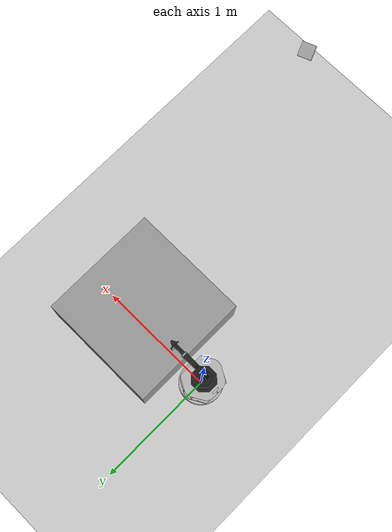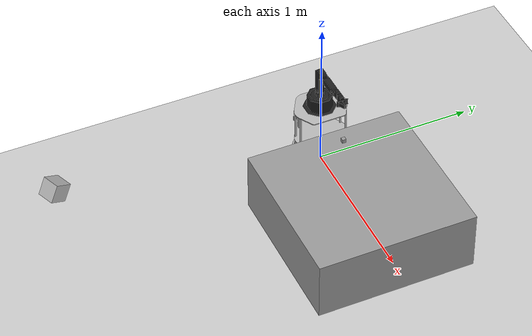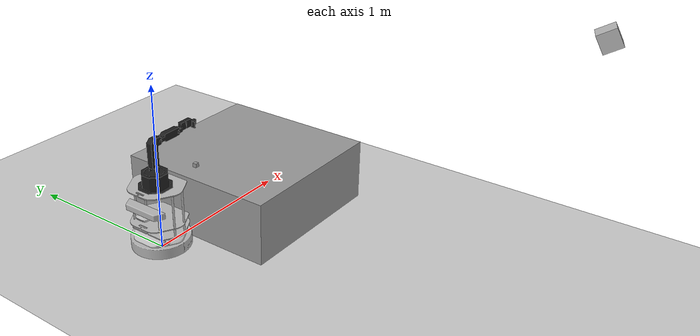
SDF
<sdf version="1.6">
 <world name="prueba1">
  <model name="ground_plane">
   <static>1</static>
   <link name="link">
    <collision name="collision">
     <geometry><plane><normal>0 0 1</normal><size>100 100</size></plane></geometry>
     <surface><friction><ode><mu>100</mu><mu2>50</mu2></ode></friction></surface>
    </collision>
    <visual name="visual">
     <cast_shadows>0</cast_shadows>
     <geometry><plane><normal>0 0 1</normal><size>100 100</size></plane></geometry>
     <material>
      <script><uri>file://media/materials/scripts/gazebo.material</uri><name>Gazebo/Grey</name></script>
     </material>
    </visual>
    <velocity_decay><linear>0</linear><angular>0</angular></velocity_decay>
   </link>
  </model>
  <light name="sun" type="directional">
   <pose>0 0 10 0 -0 0</pose>
   <diffuse>0.8 0.8 0.8 1</diffuse>
   <specular>0.2 0.2 0.2 1</specular>
   <attenuation>
    <range>1000</range>
    <constant>0.9</constant>
    <linear>0.01</linear>
    <quadratic>0.001</quadratic>
   </attenuation>
   <direction>-0.5 0.1 -0.9</direction>
  </light>
  <physics name="default_physics" default="0" type="ode">
   <max_step_size>0.001</max_step_size>
   <real_time_factor>1</real_time_factor>
   <real_time_update_rate>1000</real_time_update_rate>
  </physics>
  <scene><ambient>0.4 0.4 0.4 1</ambient><background>0.7 0.7 0.7 1</background><shadows>1</shadows></scene>
  <spherical_coordinates>
   <surface_model>EARTH_WGS84</surface_model>
   <latitude_deg>0</latitude_deg>
   <longitude_deg>0</longitude_deg>
   <elevation>0</elevation>
   <heading_deg>0</heading_deg>
  </spherical_coordinates>
  <model name="unit_box_1">
   <static>1</static>
   <pose>0.697052 -0.073491 0.176692 0 -0 0</pose>
   <link name="link_box_1">
    <inertial>
     <mass>1</mass>
     <inertia><ixx>1</ixx><ixy>0</ixy><ixz>0</ixz><iyy>1</iyy><iyz>0</iyz><izz>1</izz></inertia>
    </inertial>
    <collision name="collision">
     <geometry><box><size>1 1 0.407127</size></box></geometry>
     <surface><friction><ode><mu>100</mu><mu2>50</mu2></ode></friction></surface>
    </collision>
    <visual name="visual">
     <geometry><box><size>1 1 0.407127</size></box></geometry>
     <material>
      <script><uri>file://media/materials/scripts/gazebo.material</uri><name>Gazebo/Grey</name></script>
     </material>
    </visual>
    <velocity_decay><linear>0</linear><angular>0</angular></velocity_decay>
   </link>
   <static>0</static>
  </model>
  <gravity>0 0 -9.8</gravity>
  <magnetic_field>6e-06 2.3e-05 -4.2e-05</magnetic_field>
  <atmosphere type="adiabatic"/>
  <model name="crumb">
   <link name="base_footprint">
    <inertial>
     <pose>-0.010142 1.1e-05 0.184341 0 -0 0</pose>
     <mass>5.8303</mass>
     <inertia>
      <ixx>0.219564</ixx>
      <ixy>-4.13263e-06</ixy>
      <ixz>0.0164845</ixz>
      <iyy>0.21823</iyy>
      <iyz>9.54433e-06</iyz>
      <izz>0.0836708</izz>
     </inertia>
    </inertial>
    <collision name="base_footprint_fixed_joint_lump__base_link_collision">
     <pose>0 0 0.06969 0 -0 0</pose>
     <geometry><cylinder><length>0.10938</length><radius>0.178</radius></cylinder></geometry>
     <surface><friction><ode><mu>0.3</mu><mu2>0.3</mu2></ode></friction></surface>
    </collision>
    <collision name="base_footprint_fixed_joint_lump__camera_link_collision_1">
     <pose>-0.118 0 0.2812 0 -0 0</pose>
     <geometry><box><size>0.07271 0.27794 0.073</size></box></geometry>
    </collision>
    <collision name="base_footprint_fixed_joint_lump__caster_back_link_collision_2">
     <pose>-0.135 0 0.0192 -1.5708 0 0</pose>
     <geometry><cylinder><length>0.0176</length><radius>0.017</radius></cylinder></geometry>
     <surface>
      <contact><ode><kp>1e+06</kp><kd>100</kd><max_vel>1</max_vel><min_depth>0.001</min_depth></ode></contact>
      <friction><ode><mu>0</mu><mu2>0</mu2></ode></friction>
     </surface>
    </collision>
    <collision name="base_footprint_fixed_joint_lump__caster_front_link_collision_3">
     <pose>0.115 0 0.0172 -1.5708 0 0</pose>
     <geometry><cylinder><length>0.0176</length><radius>0.017</radius></cylinder></geometry>
     <surface>
      <contact><ode><kp>1e+06</kp><kd>100</kd><max_vel>1</max_vel><min_depth>0.001</min_depth></ode></contact>
      <friction><ode><mu>0</mu><mu2>0</mu2></ode></friction>
     </surface>
    </collision>
    <collision name="base_footprint_fixed_joint_lump__plate_bottom_link_collision_4">
     <pose>0 0 0.1408 0 -0 0</pose>
     <geometry><cylinder><length>0.006</length><radius>0.17</radius></cylinder></geometry>
    </collision>
    <collision name="base_footprint_fixed_joint_lump__plate_middle_link_collision_5">
     <pose>0 0 0.1976 0 -0 0</pose>
     <geometry><cylinder><length>0.006</length><radius>0.17</radius></cylinder></geometry>
    </collision>
    <collision name="base_footprint_fixed_joint_lump__plate_top_link_collision_6">
     <pose>0 0 0.4068 0 -0 0</pose>
     <geometry><cylinder><length>0.006</length><radius>0.17</radius></cylinder></geometry>
    </collision>
    <collision name="base_footprint_fixed_joint_lump__arm_base_link_collision_7">
     <pose>-0.01364 0 0.4068 0 -0 0</pose>
     <geometry>
      <mesh>
       <scale>1 1 1</scale>
       <uri>/home/airan/kinetic/src/Crumb/crumb_description/meshes/base_link.stl</uri>
      </mesh>
     </geometry>
    </collision>
    <collision name="base_footprint_fixed_joint_lump__pole_bottom_0_link_collision_8">
     <pose>0.12 0.082 0.113 0 -0 0</pose>
     <geometry><cylinder><length>0.0492</length><radius>0.006</radius></cylinder></geometry>
    </collision>
    <collision name="base_footprint_fixed_joint_lump__pole_bottom_1_link_collision_9">
     <pose>0.055 0.12 0.113 0 -0 0</pose>
     <geometry><cylinder><length>0.0492</length><radius>0.006</radius></cylinder></geometry>
    </collision>
    <collision name="base_footprint_fixed_joint_lump__pole_bottom_2_link_collision_10">
     <pose>-0.055 0.12 0.113 0 -0 0</pose>
     <geometry><cylinder><length>0.0492</length><radius>0.006</radius></cylinder></geometry>
    </collision>
    <collision name="base_footprint_fixed_joint_lump__pole_bottom_3_link_collision_11">
     <pose>0.12 -0.082 0.113 0 -0 0</pose>
     <geometry><cylinder><length>0.0492</length><radius>0.006</radius></cylinder></geometry>
    </collision>
    <collision name="base_footprint_fixed_joint_lump__pole_bottom_4_link_collision_12">
     <pose>0.055 -0.12 0.113 0 -0 0</pose>
     <geometry><cylinder><length>0.0492</length><radius>0.006</radius></cylinder></geometry>
    </collision>
    <collision name="base_footprint_fixed_joint_lump__pole_bottom_5_link_collision_13">
     <pose>-0.055 -0.12 0.113 0 -0 0</pose>
     <geometry><cylinder><length>0.0492</length><radius>0.006</radius></cylinder></geometry>
    </collision>
    <collision name="base_footprint_fixed_joint_lump__pole_kinect_0_link_collision_14">
     <pose>-0.1024 0.098 0.2474 0 -0 0</pose>
     <geometry><cylinder><length>0.0936</length><radius>0.006</radius></cylinder></geometry>
    </collision>
    <collision name="base_footprint_fixed_joint_lump__pole_kinect_1_link_collision_15">
     <pose>-0.1024 -0.098 0.2474 0 -0 0</pose>
     <geometry><cylinder><length>0.0936</length><radius>0.006</radius></cylinder></geometry>
    </collision>
    <collision name="base_footprint_fixed_joint_lump__pole_middle_0_link_collision_16">
     <pose>0.0381 0.1505 0.1742 0 -0 0</pose>
     <geometry><cylinder><length>0.0608</length><radius>0.006</radius></cylinder></geometry>
    </collision>
    <collision name="base_footprint_fixed_joint_lump__pole_middle_1_link_collision_17">
     <pose>0.0381 -0.1505 0.1742 0 -0 0</pose>
     <geometry><cylinder><length>0.0608</length><radius>0.006</radius></cylinder></geometry>
    </collision>
    <collision name="base_footprint_fixed_joint_lump__pole_middle_2_link_collision_18">
     <pose>-0.0381 0.1505 0.1742 0 -0 0</pose>
     <geometry><cylinder><length>0.0608</length><radius>0.006</radius></cylinder></geometry>
    </collision>
    <collision name="base_footprint_fixed_joint_lump__pole_middle_3_link_collision_19">
     <pose>-0.0381 -0.1505 0.1742 0 -0 0</pose>
     <geometry><cylinder><length>0.0608</length><radius>0.006</radius></cylinder></geometry>
    </collision>
    <collision name="base_footprint_fixed_joint_lump__pole_top_0_link_collision_20">
     <pose>0.0381 0.1505 0.3022 0 -0 0</pose>
     <geometry><cylinder><length>0.2032</length><radius>0.006</radius></cylinder></geometry>
    </collision>
    <collision name="base_footprint_fixed_joint_lump__pole_top_1_link_collision_21">
     <pose>0.0381 -0.1505 0.3022 0 -0 0</pose>
     <geometry><cylinder><length>0.2032</length><radius>0.006</radius></cylinder></geometry>
    </collision>
    <collision name="base_footprint_fixed_joint_lump__pole_top_2_link_collision_22">
     <pose>-0.0381 0.1505 0.3022 0 -0 0</pose>
     <geometry><cylinder><length>0.2032</length><radius>0.006</radius></cylinder></geometry>
    </collision>
    <collision name="base_footprint_fixed_joint_lump__pole_top_3_link_collision_23">
     <pose>-0.0381 -0.1505 0.3022 0 -0 0</pose>
     <geometry><cylinder><length>0.2032</length><radius>0.006</radius></cylinder></geometry>
    </collision>
    <visual name="base_footprint_fixed_joint_lump__base_link_visual">
     <pose>0.001 0 0.06219 0 -0 0</pose>
     <geometry>
      <mesh><scale>1 1 1</scale><uri>/opt/ros/kinetic/share/kobuki_description/meshes/main_body.dae</uri></mesh>
     </geometry>
     <material><script><uri>__default__</uri><name>__default__</name></script></material>
    </visual>
    <visual name="base_footprint_fixed_joint_lump__camera_link_visual_1">
     <pose>-0.118 0 0.2812 0 -0 1.5708</pose>
     <geometry>
      <mesh>
       <scale>1 1 1</scale>
       <uri>/opt/ros/kinetic/share/turtlebot_description/meshes/sensors/kinect.dae</uri>
      </mesh>
     </geometry>
     <material><script><uri>__default__</uri><name>__default__</name></script></material>
    </visual>
    <visual name="base_footprint_fixed_joint_lump__plate_bottom_link_visual_2">
     <pose>0.02364 0 0.1408 0 -0 0</pose>
     <geometry>
      <mesh>
       <scale>1 1 1</scale>
       <uri>/opt/ros/kinetic/share/turtlebot_description/meshes/stacks/hexagons/plate_bottom.dae</uri>
      </mesh>
     </geometry>
    </visual>
    <visual name="base_footprint_fixed_joint_lump__plate_middle_link_visual_3">
     <pose>-0.01364 0 0.1976 0 -0 0</pose>
     <geometry>
      <mesh>
       <scale>1 1 1</scale>
       <uri>/opt/ros/kinetic/share/turtlebot_description/meshes/stacks/hexagons/plate_middle.dae</uri>
      </mesh>
     </geometry>
    </visual>
    <visual name="base_footprint_fixed_joint_lump__plate_top_link_visual_4">
     <pose>-0.01364 0 0.4068 0 -0 0</pose>
     <geometry>
      <mesh>
       <scale>1 1 1</scale>
       <uri>/opt/ros/kinetic/share/turtlebot_description/meshes/stacks/hexagons/plate_top.dae</uri>
      </mesh>
     </geometry>
    </visual>
    <visual name="base_footprint_fixed_joint_lump__arm_base_link_visual_5">
     <pose>-0.01364 0 0.4068 0 -0 0</pose>
     <geometry>
      <mesh>
       <scale>1 1 1</scale>
       <uri>/home/airan/kinetic/src/Crumb/crumb_description/meshes/base_link.stl</uri>
      </mesh>
     </geometry>
     <material>
      <script><name>Gazebo/Black</name><uri>file://media/materials/scripts/gazebo.material</uri></script>
     </material>
    </visual>
    <visual name="base_footprint_fixed_joint_lump__pole_bottom_0_link_visual_6">
     <pose>0.12 0.082 0.113 0 -0 0</pose>
     <geometry>
      <mesh>
       <scale>1 1 1</scale>
       <uri>/opt/ros/kinetic/share/turtlebot_description/meshes/stacks/hexagons/pole_bottom.dae</uri>
      </mesh>
     </geometry>
    </visual>
    <visual name="base_footprint_fixed_joint_lump__pole_bottom_1_link_visual_7">
     <pose>0.055 0.12 0.113 0 -0 0</pose>
     <geometry>
      <mesh>
       <scale>1 1 1</scale>
       <uri>/opt/ros/kinetic/share/turtlebot_description/meshes/stacks/hexagons/pole_bottom.dae</uri>
      </mesh>
     </geometry>
    </visual>
    <visual name="base_footprint_fixed_joint_lump__pole_bottom_2_link_visual_8">
     <pose>-0.055 0.12 0.113 0 -0 0</pose>
     <geometry>
      <mesh>
       <scale>1 1 1</scale>
       <uri>/opt/ros/kinetic/share/turtlebot_description/meshes/stacks/hexagons/pole_bottom.dae</uri>
      </mesh>
     </geometry>
    </visual>
    <visual name="base_footprint_fixed_joint_lump__pole_bottom_3_link_visual_9">
     <pose>0.12 -0.082 0.113 0 -0 0</pose>
     <geometry>
      <mesh>
       <scale>1 1 1</scale>
       <uri>/opt/ros/kinetic/share/turtlebot_description/meshes/stacks/hexagons/pole_bottom.dae</uri>
      </mesh>
     </geometry>
    </visual>
    <visual name="base_footprint_fixed_joint_lump__pole_bottom_4_link_visual_10">
     <pose>0.055 -0.12 0.113 0 -0 0</pose>
     <geometry>
      <mesh>
       <scale>1 1 1</scale>
       <uri>/opt/ros/kinetic/share/turtlebot_description/meshes/stacks/hexagons/pole_bottom.dae</uri>
      </mesh>
     </geometry>
    </visual>
    <visual name="base_footprint_fixed_joint_lump__pole_bottom_5_link_visual_11">
     <pose>-0.055 -0.12 0.113 0 -0 0</pose>
     <geometry>
      <mesh>
       <scale>1 1 1</scale>
       <uri>/opt/ros/kinetic/share/turtlebot_description/meshes/stacks/hexagons/pole_bottom.dae</uri>
      </mesh>
     </geometry>
    </visual>
    <visual name="base_footprint_fixed_joint_lump__pole_kinect_0_link_visual_12">
     <pose>-0.1024 0.098 0.2374 0 -0 0</pose>
     <geometry>
      <mesh>
       <scale>1 1 1</scale>
       <uri>/opt/ros/kinetic/share/turtlebot_description/meshes/sensors/sensor_pole.dae</uri>
      </mesh>
     </geometry>
    </visual>
    <visual name="base_footprint_fixed_joint_lump__pole_kinect_1_link_visual_13">
     <pose>-0.1024 -0.098 0.2374 0 -0 0</pose>
     <geometry>
      <mesh>
       <scale>1 1 1</scale>
       <uri>/opt/ros/kinetic/share/turtlebot_description/meshes/sensors/sensor_pole.dae</uri>
      </mesh>
     </geometry>
    </visual>
    <visual name="base_footprint_fixed_joint_lump__pole_middle_0_link_visual_14">
     <pose>0.0381 0.1505 0.1742 3.14159 -0 3.14159</pose>
     <geometry>
      <mesh>
       <scale>1 1 1</scale>
       <uri>/opt/ros/kinetic/share/turtlebot_description/meshes/stacks/hexagons/pole_middle.dae</uri>
      </mesh>
     </geometry>
    </visual>
    <visual name="base_footprint_fixed_joint_lump__pole_middle_1_link_visual_15">
     <pose>0.0381 -0.1505 0.1742 3.14159 -0 3.14159</pose>
     <geometry>
      <mesh>
       <scale>1 1 1</scale>
       <uri>/opt/ros/kinetic/share/turtlebot_description/meshes/stacks/hexagons/pole_middle.dae</uri>
      </mesh>
     </geometry>
    </visual>
    <visual name="base_footprint_fixed_joint_lump__pole_middle_2_link_visual_16">
     <pose>-0.0381 0.1505 0.1742 3.14159 -0 3.14159</pose>
     <geometry>
      <mesh>
       <scale>1 1 1</scale>
       <uri>/opt/ros/kinetic/share/turtlebot_description/meshes/stacks/hexagons/pole_middle.dae</uri>
      </mesh>
     </geometry>
    </visual>
    <visual name="base_footprint_fixed_joint_lump__pole_middle_3_link_visual_17">
     <pose>-0.0381 -0.1505 0.1742 3.14159 -0 3.14159</pose>
     <geometry>
      <mesh>
       <scale>1 1 1</scale>
       <uri>/opt/ros/kinetic/share/turtlebot_description/meshes/stacks/hexagons/pole_middle.dae</uri>
      </mesh>
     </geometry>
    </visual>
    <visual name="base_footprint_fixed_joint_lump__pole_top_0_link_visual_18">
     <pose>0.0381 0.1505 0.3022 0 -0 0</pose>
     <geometry>
      <mesh>
       <scale>1 1 1</scale>
       <uri>/opt/ros/kinetic/share/turtlebot_description/meshes/stacks/hexagons/pole_top.dae</uri>
      </mesh>
     </geometry>
    </visual>
    <visual name="base_footprint_fixed_joint_lump__pole_top_1_link_visual_19">
     <pose>0.0381 -0.1505 0.3022 0 -0 0</pose>
     <geometry>
      <mesh>
       <scale>1 1 1</scale>
       <uri>/opt/ros/kinetic/share/turtlebot_description/meshes/stacks/hexagons/pole_top.dae</uri>
      </mesh>
     </geometry>
    </visual>
    <visual name="base_footprint_fixed_joint_lump__pole_top_2_link_visual_20">
     <pose>-0.0381 0.1505 0.3022 0 -0 0</pose>
     <geometry>
      <mesh>
       <scale>1 1 1</scale>
       <uri>/opt/ros/kinetic/share/turtlebot_description/meshes/stacks/hexagons/pole_top.dae</uri>
      </mesh>
     </geometry>
    </visual>
    <visual name="base_footprint_fixed_joint_lump__pole_top_3_link_visual_21">
     <pose>-0.0381 -0.1505 0.3022 0 -0 0</pose>
     <geometry>
      <mesh>
       <scale>1 1 1</scale>
       <uri>/opt/ros/kinetic/share/turtlebot_description/meshes/stacks/hexagons/pole_top.dae</uri>
      </mesh>
     </geometry>
    </visual>
    <sensor name="bumpers" type="contact">
     <always_on>1</always_on>
     <update_rate>50</update_rate>
     <visualize>1</visualize>
     <contact><collision>base_footprint_collision_base_link</collision><topic>__default_topic__</topic></contact>
     <pose>0 0 0.0102 0 -0 0</pose>
    </sensor>
    <sensor name="camera" type="depth">
     <always_on>1</always_on>
     <update_rate>20</update_rate>
     <camera name="__default__">
      <horizontal_fov>1.0472</horizontal_fov>
      <image><format>R8G8B8</format><width>640</width><height>480</height></image>
      <clip><near>0.05</near><far>8</far></clip>
     </camera>
     <plugin name="kinect_camera_controller" filename="libgazebo_ros_openni_kinect.so">
      <cameraName>camera</cameraName>
      <alwaysOn>true</alwaysOn>
      <updateRate>10</updateRate>
      <imageTopicName>rgb/image_color</imageTopicName>
      <depthImageTopicName>depth/image_raw</depthImageTopicName>
      <pointCloudTopicName>depth/points</pointCloudTopicName>
      <cameraInfoTopicName>rgb/camera_info</cameraInfoTopicName>
      <depthImageCameraInfoTopicName>depth/camera_info</depthImageCameraInfoTopicName>
      <frameName>camera_depth_optical_frame</frameName>
      <baseline>0.1</baseline>
      <distortion_k1>0.0</distortion_k1>
      <distortion_k2>0.0</distortion_k2>
      <distortion_k3>0.0</distortion_k3>
      <distortion_t1>0.0</distortion_t1>
      <distortion_t2>0.0</distortion_t2>
      <pointCloudCutoff>0.4</pointCloudCutoff>
      <robotNamespace>/</robotNamespace>
     </plugin>
     <pose>-0.118 0 0.2812 0 -0 0</pose>
    </sensor>
    <sensor name="cliff_sensor_front" type="ray">
     <always_on>1</always_on>
     <update_rate>50</update_rate>
     <visualize>1</visualize>
     <ray>
      <scan>
       <horizontal>
        <samples>50</samples>
        <resolution>1</resolution>
        <min_angle>-0.0436</min_angle>
        <max_angle>0.0436</max_angle>
       </horizontal>
       <vertical><samples>1</samples><min_angle>0</min_angle><max_angle>0</max_angle></vertical>
      </scan>
      <range><min>0.01</min><max>0.15</max><resolution>1</resolution></range>
     </ray>
     <pose>0.156 0 0.0316 3.14159 1.57079 3.14159</pose>
    </sensor>
    <sensor name="cliff_sensor_left" type="ray">
     <always_on>1</always_on>
     <update_rate>50</update_rate>
     <visualize>1</visualize>
     <ray>
      <scan>
       <horizontal>
        <samples>50</samples>
        <resolution>1</resolution>
        <min_angle>-0.0436</min_angle>
        <max_angle>0.0436</max_angle>
       </horizontal>
       <vertical><samples>1</samples><min_angle>0</min_angle><max_angle>0</max_angle></vertical>
      </scan>
      <range><min>0.01</min><max>0.15</max><resolution>1</resolution></range>
     </ray>
     <pose>0.08734 0.13601 0.0316 3.14159 1.57079 3.14159</pose>
    </sensor>
    <sensor name="cliff_sensor_right" type="ray">
     <always_on>1</always_on>
     <update_rate>50</update_rate>
     <visualize>1</visualize>
     <ray>
      <scan>
       <horizontal>
        <samples>50</samples>
        <resolution>1</resolution>
        <min_angle>-0.0436</min_angle>
        <max_angle>0.0436</max_angle>
       </horizontal>
       <vertical><samples>1</samples><min_angle>0</min_angle><max_angle>0</max_angle></vertical>
      </scan>
      <range><min>0.01</min><max>0.15</max><resolution>1</resolution></range>
     </ray>
     <pose>0.085 -0.13601 0.0316 3.14159 1.57079 3.14159</pose>
    </sensor>
    <sensor name="imu" type="imu">
     <always_on>1</always_on>
     <update_rate>50</update_rate>
     <visualize>0</visualize>
     <pose>0.056 0.062 0.0304 0 -0 0</pose>
    </sensor>
    <self_collide>1</self_collide>
   </link>
   <link name="shoulder_link">
    <pose>-0.01364 0 0.5318 0 -0 0</pose>
    <inertial>
     <pose>0 0 -0.03681 0 -0 0</pose>
     <mass>0.02454</mass>
     <inertia>
      <ixx>1.81179e-05</ixx>
      <ixy>0</ixy>
      <ixz>0</ixz>
      <iyy>1.91952e-05</iyy>
      <iyz>0</iyz>
      <izz>3.5264e-05</izz>
     </inertia>
    </inertial>
    <collision name="shoulder_link_collision">
     <geometry>
      <mesh>
       <scale>1 1 1</scale>
       <uri>/home/airan/kinetic/src/Crumb/crumb_description/meshes/shoulder_link.stl</uri>
      </mesh>
     </geometry>
    </collision>
    <visual name="shoulder_link_visual">
     <geometry>
      <mesh>
       <scale>1 1 1</scale>
       <uri>/home/airan/kinetic/src/Crumb/crumb_description/meshes/shoulder_link.stl</uri>
      </mesh>
     </geometry>
     <material>
      <script><name>Gazebo/Black</name><uri>file://media/materials/scripts/gazebo.material</uri></script>
     </material>
    </visual>
    <self_collide>1</self_collide>
   </link>
   <joint name="arm_1_joint" type="revolute">
    <child>shoulder_link</child>
    <parent>base_footprint</parent>
    <axis>
     <xyz>0 0 1</xyz>
     <limit><lower>-1.5708</lower><upper>1.5708</upper><effort>2.5</effort><velocity>1.7453</velocity></limit>
     <dynamics>
      <damping>0.005</damping>
      <friction>0.01</friction>
      <spring_reference>0</spring_reference>
      <spring_stiffness>0</spring_stiffness>
     </dynamics>
     <use_parent_model_frame>1</use_parent_model_frame>
    </axis>
   </joint>
   <link name="biceps_link">
    <pose>-0.01364 0 0.5318 0 -0 0</pose>
    <inertial>
     <pose>0.00667 0 0.0834 0 -0 0</pose>
     <mass>0.2233</mass>
     <inertia>
      <ixx>0.000680842</ixx>
      <ixy>0</ixy>
      <ixz>0</ixz>
      <iyy>0.000727958</iyy>
      <iyz>0</iyz>
      <izz>9.93015e-05</izz>
     </inertia>
    </inertial>
    <collision name="biceps_link_collision">
     <pose>0.04825 0 0.14 0 -0 0</pose>
     <geometry>
      <mesh>
       <scale>1 1 1</scale>
       <uri>/home/airan/kinetic/src/Crumb/crumb_description/meshes/biceps_link.stl</uri>
      </mesh>
     </geometry>
    </collision>
    <visual name="biceps_link_visual">
     <pose>0.04825 0 0.14 0 -0 0</pose>
     <geometry>
      <mesh>
       <scale>1 1 1</scale>
       <uri>/home/airan/kinetic/src/Crumb/crumb_description/meshes/biceps_link.stl</uri>
      </mesh>
     </geometry>
     <material>
      <script><name>Gazebo/Black</name><uri>file://media/materials/scripts/gazebo.material</uri></script>
     </material>
    </visual>
    <self_collide>1</self_collide>
   </link>
   <joint name="arm_2_joint" type="revolute">
    <child>biceps_link</child>
    <parent>shoulder_link</parent>
    <axis>
     <xyz>0 1 0</xyz>
     <limit><lower>-1.5708</lower><upper>1.5708</upper><effort>6</effort><velocity>1.7453</velocity></limit>
     <dynamics>
      <damping>0.005</damping>
      <friction>0.01</friction>
      <spring_reference>0</spring_reference>
      <spring_stiffness>0</spring_stiffness>
     </dynamics>
     <use_parent_model_frame>1</use_parent_model_frame>
    </axis>
   </joint>
   <link name="forearm_link">
    <pose>0.03461 0 0.67383 0 -0 0</pose>
    <inertial>
     <pose>0.09372 0 1.8e-05 0 1.57 0</pose>
     <mass>0.1022</mass>
     <inertia>
      <ixx>0.000146555</ixx>
      <ixy>0</ixy>
      <ixz>0</ixz>
      <iyy>0.000151256</iyy>
      <iyz>0</iyz>
      <izz>2.85751e-05</izz>
     </inertia>
    </inertial>
    <collision name="forearm_link_collision">
     <pose>0.14475 0 0 3.14159 1.57079 3.14159</pose>
     <geometry>
      <mesh>
       <scale>1 1 1</scale>
       <uri>/home/airan/kinetic/src/Crumb/crumb_description/meshes/forearm_link.stl</uri>
      </mesh>
     </geometry>
    </collision>
    <visual name="forearm_link_visual">
     <pose>0.14475 0 0 3.14159 1.57079 3.14159</pose>
     <geometry>
      <mesh>
       <scale>1 1 1</scale>
       <uri>/home/airan/kinetic/src/Crumb/crumb_description/meshes/forearm_link.stl</uri>
      </mesh>
     </geometry>
     <material>
      <script><name>Gazebo/Black</name><uri>file://media/materials/scripts/gazebo.material</uri></script>
     </material>
    </visual>
    <self_collide>1</self_collide>
   </link>
   <joint name="arm_3_joint" type="revolute">
    <child>forearm_link</child>
    <parent>biceps_link</parent>
    <axis>
     <xyz>0 -1 0</xyz>
     <limit><lower>-1.5708</lower><upper>1.5708</upper><effort>2.5</effort><velocity>1.7453</velocity></limit>
     <dynamics>
      <damping>0.005</damping>
      <friction>0.01</friction>
      <spring_reference>0</spring_reference>
      <spring_stiffness>0</spring_stiffness>
     </dynamics>
     <use_parent_model_frame>1</use_parent_model_frame>
    </axis>
   </joint>
   <link name="wrist_1_link">
    <pose>0.17664 0 0.67383 0 -0 0</pose>
    <inertial>
     <pose>0.04807 0 0.01085 0 1.57 0</pose>
     <mass>0.06297</mass>
     <inertia>
      <ixx>1.59944e-05</ixx>
      <ixy>0</ixy>
      <ixz>0</ixz>
      <iyy>2.65041e-05</iyy>
      <iyz>0</iyz>
      <izz>2.33808e-05</izz>
     </inertia>
    </inertial>
    <collision name="wrist_1_link_collision">
     <pose>0 0 0 3.14159 1.57079 3.14159</pose>
     <geometry>
      <mesh>
       <scale>1 1 1</scale>
       <uri>/home/airan/kinetic/src/Crumb/crumb_description/meshes/wrist_1_link.stl</uri>
      </mesh>
     </geometry>
    </collision>
    <visual name="wrist_1_link_visual">
     <pose>0 0 0 3.14159 1.57079 3.14159</pose>
     <geometry>
      <mesh>
       <scale>1 1 1</scale>
       <uri>/home/airan/kinetic/src/Crumb/crumb_description/meshes/wrist_1_link.stl</uri>
      </mesh>
     </geometry>
     <material>
      <script><name>Gazebo/Black</name><uri>file://media/materials/scripts/gazebo.material</uri></script>
     </material>
    </visual>
    <self_collide>1</self_collide>
   </link>
   <joint name="arm_4_joint" type="revolute">
    <child>wrist_1_link</child>
    <parent>forearm_link</parent>
    <axis>
     <xyz>0 -1 0</xyz>
     <limit><lower>-1.5708</lower><upper>1.5708</upper><effort>2.5</effort><velocity>1.7453</velocity></limit>
     <dynamics>
      <damping>0.005</damping>
      <friction>0.01</friction>
      <spring_reference>0</spring_reference>
      <spring_stiffness>0</spring_stiffness>
     </dynamics>
     <use_parent_model_frame>1</use_parent_model_frame>
    </axis>
   </joint>
   <link name="wrist_2_link">
    <pose>0.24814 0 0.67383 0 -0 0</pose>
    <inertial>
     <pose>0.025322 0 0.013016 0 1.57 0</pose>
     <mass>0.056795</mass>
     <inertia>
      <ixx>1.35142e-05</ixx>
      <ixy>1.17886e-12</ixy>
      <ixz>1.27977e-06</ixz>
      <iyy>2.35787e-05</iyy>
      <iyz>7.5014e-10</iyz>
      <izz>1.54803e-05</izz>
     </inertia>
    </inertial>
    <collision name="wrist_2_link_collision">
     <pose>0.043 0 0 3.14159 1.57079 3.14159</pose>
     <geometry>
      <mesh>
       <scale>1 1 1</scale>
       <uri>/home/airan/kinetic/src/Crumb/crumb_description/meshes/wrist_2_link.stl</uri>
      </mesh>
     </geometry>
    </collision>
    <collision name="wrist_2_link_fixed_joint_lump__gripper_rail_link_collision_1">
     <pose>0.043 0 0 1.57 -0 1.57</pose>
     <geometry>
      <mesh>
       <scale>1 1 1</scale>
       <uri>/home/airan/kinetic/src/Crumb/crumb_description/meshes/gripper_rail_link.stl</uri>
      </mesh>
     </geometry>
    </collision>
    <visual name="wrist_2_link_visual">
     <pose>0.043 0 0 3.14159 1.57079 3.14159</pose>
     <geometry>
      <mesh>
       <scale>1 1 1</scale>
       <uri>/home/airan/kinetic/src/Crumb/crumb_description/meshes/wrist_2_link.stl</uri>
      </mesh>
     </geometry>
     <material>
      <script><name>Gazebo/Black</name><uri>file://media/materials/scripts/gazebo.material</uri></script>
     </material>
    </visual>
    <visual name="wrist_2_link_fixed_joint_lump__gripper_rail_link_visual_1">
     <pose>0.043 0 0 1.57 -0 1.57</pose>
     <geometry>
      <mesh>
       <scale>1 1 1</scale>
       <uri>/home/airan/kinetic/src/Crumb/crumb_description/meshes/gripper_rail_link.stl</uri>
      </mesh>
     </geometry>
     <material>
      <script><name>Gazebo/Black</name><uri>file://media/materials/scripts/gazebo.material</uri></script>
     </material>
    </visual>
    <self_collide>1</self_collide>
   </link>
   <joint name="arm_5_joint" type="revolute">
    <child>wrist_2_link</child>
    <parent>wrist_1_link</parent>
    <axis>
     <xyz>1 0 0</xyz>
     <limit><lower>-1.5708</lower><upper>1.5708</upper><effort>1.5</effort><velocity>1.7453</velocity></limit>
     <dynamics>
      <damping>0.005</damping>
      <friction>0.01</friction>
      <spring_reference>0</spring_reference>
      <spring_stiffness>0</spring_stiffness>
     </dynamics>
     <use_parent_model_frame>1</use_parent_model_frame>
    </axis>
   </joint>
   <link name="gripper_1_link">
    <pose>0.29114 0 0.67383 0 -0 0</pose>
    <inertial>
     <pose>0.0173 -0.012 0 1.57 -0 1.57</pose>
     <mass>0.005933</mass>
     <inertia>
      <ixx>1.623e-06</ixx>
      <ixy>0</ixy>
      <ixz>0</ixz>
      <iyy>1.169e-06</iyy>
      <iyz>0</iyz>
      <izz>8.02e-07</izz>
     </inertia>
    </inertial>
    <collision name="gripper_1_link_collision">
     <pose>0 -0.0035 0 1.57 -0 1.57</pose>
     <geometry>
      <mesh>
       <scale>1 1 1</scale>
       <uri>/home/airan/kinetic/src/Crumb/crumb_description/meshes/gripper_hand_fixed_link.stl</uri>
      </mesh>
     </geometry>
     <surface>
      <contact><ode><kp>1.5</kp><kd>1.5</kd></ode></contact>
      <friction><ode><mu>0.5</mu><mu2>0.5</mu2></ode></friction>
     </surface>
    </collision>
    <visual name="gripper_1_link_visual">
     <pose>0 -0.0035 0 1.57 -0 1.57</pose>
     <geometry>
      <mesh>
       <scale>1 1 1</scale>
       <uri>/home/airan/kinetic/src/Crumb/crumb_description/meshes/gripper_hand_fixed_link.stl</uri>
      </mesh>
     </geometry>
     <material>
      <script><name>Gazebo/Black</name><uri>file://media/materials/scripts/gazebo.material</uri></script>
     </material>
    </visual>
    <self_collide>1</self_collide>
   </link>
   <joint name="gripper_1_joint" type="prismatic">
    <child>gripper_1_link</child>
    <parent>wrist_2_link</parent>
    <axis>
     <xyz>0 -1 0</xyz>
     <limit><lower>0</lower><upper>0.0185</upper><effort>2.5</effort><velocity>1.7453</velocity></limit>
     <dynamics>
      <damping>0.005</damping>
      <friction>0.01</friction>
      <spring_reference>0</spring_reference>
      <spring_stiffness>0</spring_stiffness>
     </dynamics>
     <use_parent_model_frame>1</use_parent_model_frame>
    </axis>
   </joint>
   <link name="gripper_2_link">
    <pose>0.29114 0 0.67383 0 -0 0</pose>
    <inertial>
     <pose>0.0173 0.0105 0 -1.57 -0 -1.57</pose>
     <mass>0.005933</mass>
     <inertia>
      <ixx>1.623e-06</ixx>
      <ixy>0</ixy>
      <ixz>0</ixz>
      <iyy>1.169e-06</iyy>
      <iyz>0</iyz>
      <izz>8.02e-07</izz>
     </inertia>
    </inertial>
    <collision name="gripper_2_link_collision">
     <pose>0 0.0007 0 -1.57 -0 -1.57</pose>
     <geometry>
      <mesh>
       <scale>1 1 1</scale>
       <uri>/home/airan/kinetic/src/Crumb/crumb_description/meshes/gripper_hand_fixed_link.stl</uri>
      </mesh>
     </geometry>
     <surface>
      <contact><ode><kp>1.5</kp><kd>1.5</kd></ode></contact>
      <friction><ode><mu>0.5</mu><mu2>0.5</mu2></ode></friction>
     </surface>
    </collision>
    <visual name="gripper_2_link_visual">
     <pose>0 0.0007 0 -1.57 -0 -1.57</pose>
     <geometry>
      <mesh>
       <scale>1 1 1</scale>
       <uri>/home/airan/kinetic/src/Crumb/crumb_description/meshes/gripper_hand_fixed_link.stl</uri>
      </mesh>
     </geometry>
     <material>
      <script><name>Gazebo/Black</name><uri>file://media/materials/scripts/gazebo.material</uri></script>
     </material>
    </visual>
    <self_collide>1</self_collide>
   </link>
   <joint name="gripper_2_joint" type="prismatic">
    <child>gripper_2_link</child>
    <parent>wrist_2_link</parent>
    <axis>
     <xyz>0 1 0</xyz>
     <limit><lower>0</lower><upper>0.0185</upper><effort>2.5</effort><velocity>1.7453</velocity></limit>
     <dynamics>
      <damping>0.005</damping>
      <friction>0.01</friction>
      <spring_reference>0</spring_reference>
      <spring_stiffness>0</spring_stiffness>
     </dynamics>
     <use_parent_model_frame>1</use_parent_model_frame>
    </axis>
   </joint>
   <link name="wheel_left_link">
    <pose>0 0.115 0.0352 -1.5708 0 0</pose>
    <inertial>
     <mass>0.01</mass>
     <inertia><ixx>0.001</ixx><ixy>0</ixy><ixz>0</ixz><iyy>0.001</iyy><iyz>0</iyz><izz>0.001</izz></inertia>
    </inertial>
    <collision name="wheel_left_link_collision">
     <geometry><cylinder><length>0.0206</length><radius>0.0352</radius></cylinder></geometry>
     <surface>
      <contact><ode><kp>1e+06</kp><kd>100</kd><max_vel>1</max_vel><min_depth>0.001</min_depth></ode></contact>
      <friction><ode><mu>1</mu><mu2>1</mu2></ode></friction>
     </surface>
    </collision>
    <visual name="wheel_left_link_visual">
     <geometry>
      <mesh><scale>1 1 1</scale><uri>/opt/ros/kinetic/share/kobuki_description/meshes/wheel.dae</uri></mesh>
     </geometry>
     <material><script><uri>__default__</uri><name>__default__</name></script></material>
    </visual>
   </link>
   <joint name="wheel_left_joint" type="revolute">
    <child>wheel_left_link</child>
    <parent>base_footprint</parent>
    <axis>
     <xyz>0 1 0</xyz>
     <limit><lower>-1e+16</lower><upper>1e+16</upper></limit>
     <dynamics><spring_reference>0</spring_reference><spring_stiffness>0</spring_stiffness></dynamics>
     <use_parent_model_frame>1</use_parent_model_frame>
    </axis>
   </joint>
   <link name="wheel_right_link">
    <pose>0 -0.115 0.0352 -1.5708 0 0</pose>
    <inertial>
     <mass>0.01</mass>
     <inertia><ixx>0.001</ixx><ixy>0</ixy><ixz>0</ixz><iyy>0.001</iyy><iyz>0</iyz><izz>0.001</izz></inertia>
    </inertial>
    <collision name="wheel_right_link_collision">
     <geometry><cylinder><length>0.0206</length><radius>0.035</radius></cylinder></geometry>
     <surface>
      <contact><ode><kp>1e+06</kp><kd>100</kd><max_vel>1</max_vel><min_depth>0.001</min_depth></ode></contact>
      <friction><ode><mu>1</mu><mu2>1</mu2></ode></friction>
     </surface>
    </collision>
    <visual name="wheel_right_link_visual">
     <geometry>
      <mesh><scale>1 1 1</scale><uri>/opt/ros/kinetic/share/kobuki_description/meshes/wheel.dae</uri></mesh>
     </geometry>
     <material><script><uri>__default__</uri><name>__default__</name></script></material>
    </visual>
   </link>
   <joint name="wheel_right_joint" type="revolute">
    <child>wheel_right_link</child>
    <parent>base_footprint</parent>
    <axis>
     <xyz>0 1 0</xyz>
     <limit><lower>-1e+16</lower><upper>1e+16</upper></limit>
     <dynamics><spring_reference>0</spring_reference><spring_stiffness>0</spring_stiffness></dynamics>
     <use_parent_model_frame>1</use_parent_model_frame>
    </axis>
   </joint>
   <plugin name="gazebo_ros_control" filename="libgazebo_ros_control.so">
    <robotSimType>gazebo_ros_control/DefaultRobotHWSim</robotSimType>
    <robotNamespace>/</robotNamespace>
   </plugin>
   <plugin name="MimicJointPlugin" filename="libroboticsgroup_gazebo_mimic_joint_plugin.so">
    <joint>gripper_1_joint</joint>
    <mimicJoint>gripper_2_joint</mimicJoint>
    <robotNamespace>/</robotNamespace>
   </plugin>
   <gripper name="gripper">
    <grasp_check><attach_steps>5</attach_steps><detach_steps>5</detach_steps></grasp_check>
    <gripper_link>gripper_1_link</gripper_link>
    <gripper_link>gripper_2_link</gripper_link>
    <palm_link>wrist_2_link</palm_link>
   </gripper>
   <static>0</static>
   <plugin name="kobuki_controller" filename="libgazebo_ros_kobuki.so">
    <publish_tf>1</publish_tf>
    <left_wheel_joint_name>wheel_left_joint</left_wheel_joint_name>
    <right_wheel_joint_name>wheel_right_joint</right_wheel_joint_name>
    <wheel_separation>.230</wheel_separation>
    <wheel_diameter>0.070</wheel_diameter>
    <torque>1.0</torque>
    <velocity_command_timeout>0.6</velocity_command_timeout>
    <cliff_sensor_left_name>cliff_sensor_left</cliff_sensor_left_name>
    <cliff_sensor_center_name>cliff_sensor_front</cliff_sensor_center_name>
    <cliff_sensor_right_name>cliff_sensor_right</cliff_sensor_right_name>
    <cliff_detection_threshold>0.04</cliff_detection_threshold>
    <bumper_name>bumpers</bumper_name>
    <imu_name>imu</imu_name>
    <robotNamespace>/</robotNamespace>
   </plugin>
   <pose>9e-05 1.7e-05 -0.000299 0.000732 -0.014038 0.002232</pose>
  </model>
  <model name="little_box_0">
   <link name="link">
    <inertial>
     <mass>0.01</mass>
     <inertia>
      <ixx>0.166667</ixx>
      <ixy>0</ixy>
      <ixz>0</ixz>
      <iyy>0.166667</iyy>
      <iyz>0</iyz>
      <izz>0.166667</izz>
     </inertia>
    </inertial>
    <visual name="visual">
     <geometry><box><size>0.025 0.025 0.025</size></box></geometry>
     <material>
      <script><name>Gazebo/Grey</name><uri>file://media/materials/scripts/gazebo.material</uri></script>
      <ambient>0.3 0.3 0.3 1</ambient>
      <diffuse>0.7 0.7 0.7 1</diffuse>
      <specular>0.01 0.01 0.01 1</specular>
      <emissive>0 0 0 1</emissive>
      <shader type="vertex"><normal_map>__default__</normal_map></shader>
     </material>
    </visual>
    <collision name="collision">
     <geometry><box><size>0.025 0.025 0.025</size></box></geometry>
     <surface>
      <friction>
       <ode><mu>1</mu><mu2>1</mu2><fdir1>0 0 0</fdir1><slip1>0</slip1><slip2>0</slip2></ode>
       <torsional>
        <coefficient>1</coefficient>
        <patch_radius>0</patch_radius>
        <surface_radius>0</surface_radius>
        <use_patch_radius>1</use_patch_radius>
        <ode><slip>0</slip></ode>
       </torsional>
      </friction>
      <bounce><restitution_coefficient>0</restitution_coefficient><threshold>1e+06</threshold></bounce>
      <contact>
       <collide_without_contact>0</collide_without_contact>
       <collide_without_contact_bitmask>1</collide_without_contact_bitmask>
       <collide_bitmask>1</collide_bitmask>
       <ode>
        <soft_cfm>0</soft_cfm>
        <soft_erp>0.2</soft_erp>
        <kp>1e+13</kp>
        <kd>1</kd>
        <max_vel>0.01</max_vel>
        <min_depth>0</min_depth>
       </ode>
       <bullet>
        <split_impulse>1</split_impulse>
        <split_impulse_penetration_threshold>-0.01</split_impulse_penetration_threshold>
        <soft_cfm>0</soft_cfm>
        <soft_erp>0.2</soft_erp>
        <kp>1e+13</kp>
        <kd>1</kd>
       </bullet>
      </contact>
     </surface>
    </collision>
   </link>
   <static>0</static>
   <pose>0.31204 0.000140 0.403016 0.000202 0.00011 -3e-05</pose>
  </model>
  <model name="camera">
   <link name="link">
    <pose>1 -2 1.40 0 0.486 1.946</pose>
    <inertial><mass>0.1</mass></inertial>
    <collision name="collision"><geometry><box><size>0.1 0.1 0.1</size></box></geometry></collision>
    <visual name="visual"><geometry><box><size>0.1 0.1 0.1</size></box></geometry></visual>
    <sensor name="camera" type="camera">
     <camera>
      <horizontal_fov>1.047</horizontal_fov>
      <image><width>640</width><height>480</height></image>
      <clip><near>0.1</near><far>100</far></clip>
      <save enabled="false"><path>/home/airan/ISA/video/</path></save>
     </camera>
     <always_on>1</always_on>
     <update_rate>30</update_rate>
     <visualize>true</visualize>
    </sensor>
    <gravity>0</gravity>
   </link>
  </model>
 </world>
</sdf>
